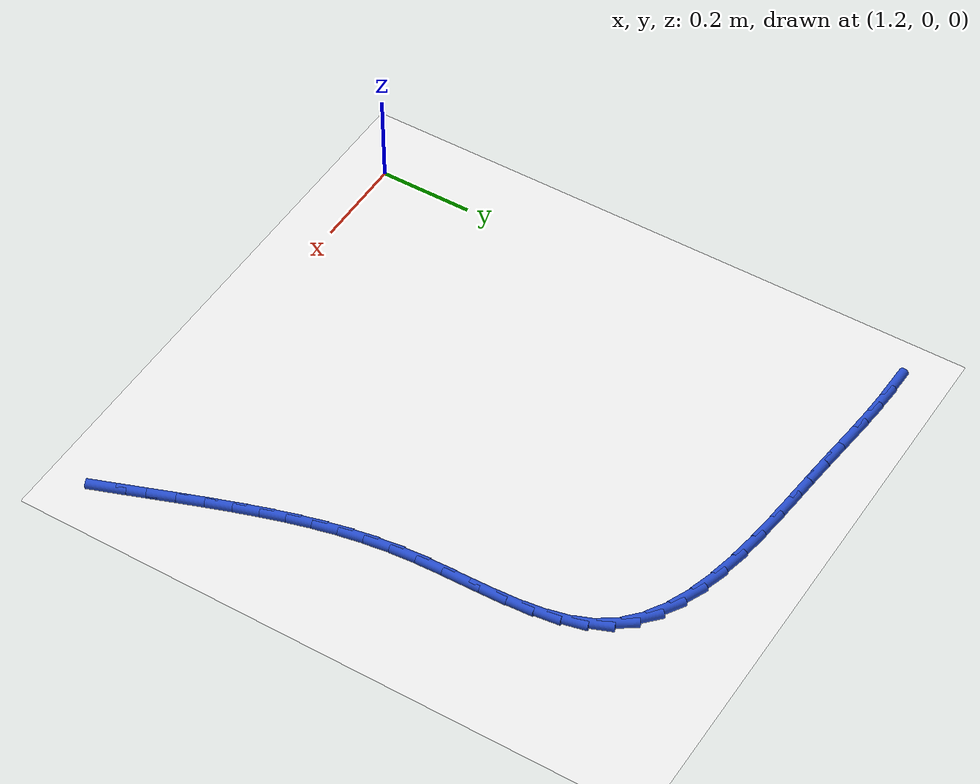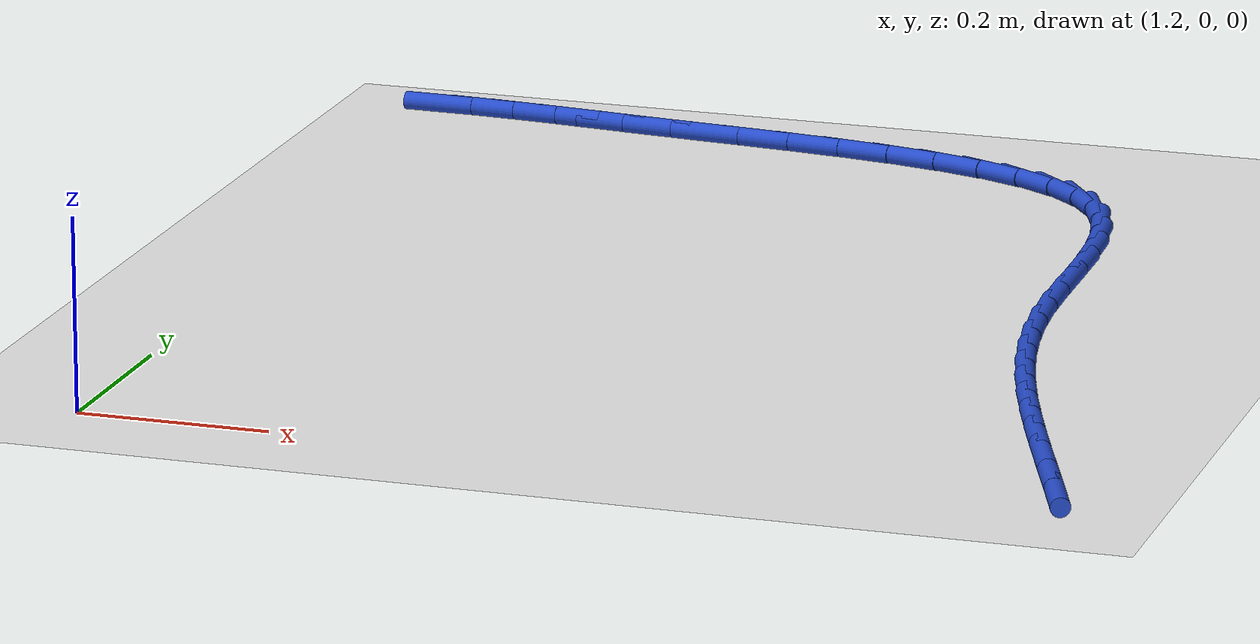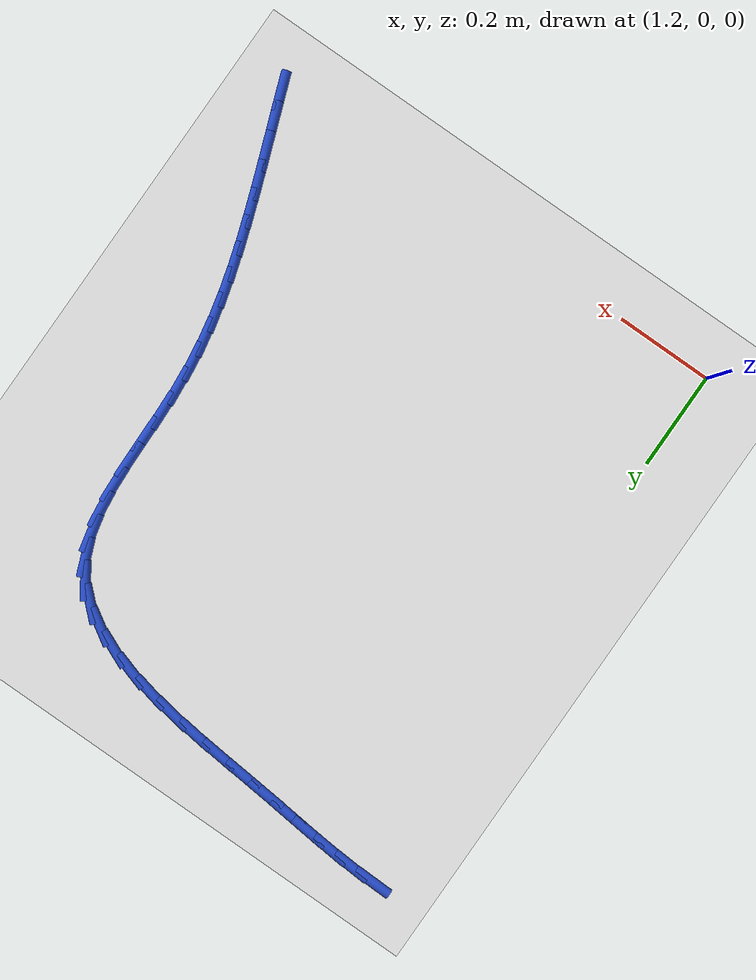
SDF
<sdf version="1.6">
 <world name="default">
  <model name="ground_plane">
   <static>1</static>
   <link name="link">
    <collision name="collision">
     <geometry><plane><normal>0 0 1</normal><size>100 100</size></plane></geometry>
     <surface><friction><ode><mu>100</mu><mu2>50</mu2></ode></friction></surface>
    </collision>
    <visual name="visual">
     <cast_shadows>0</cast_shadows>
     <geometry><plane><normal>0 0 1</normal><size>100 100</size></plane></geometry>
     <material>
      <script><uri>file://media/materials/scripts/gazebo.material</uri><name>Gazebo/WhiteGlow</name></script>
     </material>
    </visual>
   </link>
  </model>
  <model name="line">
   <link name="link_34">
    <pose>1.1733907742856655 1.1592010132068942 0.01 0 1.57 -0.024491602089216087</pose>
    <collision name="collision">
     <geometry><cylinder><radius>0.01</radius><length>0.08</length></cylinder></geometry>
    </collision>
    <visual name="visual">
     <material>
      <script><name>Gazebo/Blue</name><uri>file://media/materials/scripts/gazebo.material</uri></script>
     </material>
     <geometry><cylinder><radius>0.01</radius><length>0.08</length></cylinder></geometry>
    </visual>
   </link>
   <link name="link_35">
    <pose>1.2239940162210248 1.1579614108773129 0.01 0 1.57 -0.0646316995367665</pose>
    <collision name="collision">
     <geometry><cylinder><radius>0.01</radius><length>0.08</length></cylinder></geometry>
    </collision>
    <visual name="visual">
     <material>
      <script><name>Gazebo/Blue</name><uri>file://media/materials/scripts/gazebo.material</uri></script>
     </material>
     <geometry><cylinder><radius>0.01</radius><length>0.08</length></cylinder></geometry>
    </visual>
   </link>
   <link name="link_36">
    <pose>1.2752137911200274 1.1546463725678595 0.01 0 1.57 -0.09071010067974519</pose>
    <collision name="collision">
     <geometry><cylinder><radius>0.01</radius><length>0.08</length></cylinder></geometry>
    </collision>
    <visual name="visual">
     <material>
      <script><name>Gazebo/Blue</name><uri>file://media/materials/scripts/gazebo.material</uri></script>
     </material>
     <geometry><cylinder><radius>0.01</radius><length>0.08</length></cylinder></geometry>
    </visual>
   </link>
   <link name="link_37">
    <pose>1.3274568585449105 1.1498943578034995 0.01 0 1.57 -0.10304732148852294</pose>
    <collision name="collision">
     <geometry><cylinder><radius>0.01</radius><length>0.08</length></cylinder></geometry>
    </collision>
    <visual name="visual">
     <material>
      <script><name>Gazebo/Blue</name><uri>file://media/materials/scripts/gazebo.material</uri></script>
     </material>
     <geometry><cylinder><radius>0.01</radius><length>0.08</length></cylinder></geometry>
    </visual>
   </link>
   <link name="link_38">
    <pose>1.3811299780579092 1.1443438261091976 0.01 0 1.57 -0.10251445731559321</pose>
    <collision name="collision">
     <geometry><cylinder><radius>0.01</radius><length>0.08</length></cylinder></geometry>
    </collision>
    <visual name="visual">
     <material>
      <script><name>Gazebo/Blue</name><uri>file://media/materials/scripts/gazebo.material</uri></script>
     </material>
     <geometry><cylinder><radius>0.01</radius><length>0.08</length></cylinder></geometry>
    </visual>
   </link>
   <link name="link_39">
    <pose>1.43663990922126 1.138633237009918 0.01 0 1.57 -0.09242456907437945</pose>
    <collision name="collision">
     <geometry><cylinder><radius>0.01</radius><length>0.08</length></cylinder></geometry>
    </collision>
    <visual name="visual">
     <material>
      <script><name>Gazebo/Blue</name><uri>file://media/materials/scripts/gazebo.material</uri></script>
     </material>
     <geometry><cylinder><radius>0.01</radius><length>0.08</length></cylinder></geometry>
    </visual>
   </link>
   <link name="link_40">
    <pose>1.4942756534083494 1.1332910580200908 0.01 0 1.57 -0.08934370611154342</pose>
    <collision name="collision">
     <geometry><cylinder><radius>0.01</radius><length>0.08</length></cylinder></geometry>
    </collision>
    <visual name="visual">
     <material>
      <script><name>Gazebo/Blue</name><uri>file://media/materials/scripts/gazebo.material</uri></script>
     </material>
     <geometry><cylinder><radius>0.01</radius><length>0.08</length></cylinder></geometry>
    </visual>
   </link>
   <link name="link_41">
    <pose>1.553413619160161 1.1279933495186643 0.01 0 1.57 -0.09993796721931673</pose>
    <collision name="collision">
     <geometry><cylinder><radius>0.01</radius><length>0.08</length></cylinder></geometry>
    </collision>
    <visual name="visual">
     <material>
      <script><name>Gazebo/Blue</name><uri>file://media/materials/scripts/gazebo.material</uri></script>
     </material>
     <geometry><cylinder><radius>0.01</radius><length>0.08</length></cylinder></geometry>
    </visual>
   </link>
   <link name="link_42">
    <pose>1.61300403490625 1.1220180984447343 0.01 0 1.57 -0.12440871492177794</pose>
    <collision name="collision">
     <geometry><cylinder><radius>0.01</radius><length>0.08</length></cylinder></geometry>
    </collision>
    <visual name="visual">
     <material>
      <script><name>Gazebo/Blue</name><uri>file://media/materials/scripts/gazebo.material</uri></script>
     </material>
     <geometry><cylinder><radius>0.01</radius><length>0.08</length></cylinder></geometry>
    </visual>
   </link>
   <link name="link_43">
    <pose>1.6719947225764202 1.114641043946829 0.01 0 1.57 -0.1642433411252326</pose>
    <collision name="collision">
     <geometry><cylinder><radius>0.01</radius><length>0.08</length></cylinder></geometry>
    </collision>
    <visual name="visual">
     <material>
      <script><name>Gazebo/Blue</name><uri>file://media/materials/scripts/gazebo.material</uri></script>
     </material>
     <geometry><cylinder><radius>0.01</radius><length>0.08</length></cylinder></geometry>
    </visual>
   </link>
   <link name="link_44">
    <pose>1.729333504100478 1.1051379251734785 0.01 0 1.57 -0.22237057410697364</pose>
    <collision name="collision">
     <geometry><cylinder><radius>0.01</radius><length>0.08</length></cylinder></geometry>
    </collision>
    <visual name="visual">
     <material>
      <script><name>Gazebo/Blue</name><uri>file://media/materials/scripts/gazebo.material</uri></script>
     </material>
     <geometry><cylinder><radius>0.01</radius><length>0.08</length></cylinder></geometry>
    </visual>
   </link>
   <link name="link_45">
    <pose>1.7839682014082259 1.0927844812732115 0.01 0 1.57 -0.3033954484459668</pose>
    <collision name="collision">
     <geometry><cylinder><radius>0.01</radius><length>0.08</length></cylinder></geometry>
    </collision>
    <visual name="visual">
     <material>
      <script><name>Gazebo/Blue</name><uri>file://media/materials/scripts/gazebo.material</uri></script>
     </material>
     <geometry><cylinder><radius>0.01</radius><length>0.08</length></cylinder></geometry>
    </visual>
   </link>
   <link name="link_46">
    <pose>1.8348466364294709 1.0768564513945582 0.01 0 1.57 -0.4137078737110211</pose>
    <collision name="collision">
     <geometry><cylinder><radius>0.01</radius><length>0.08</length></cylinder></geometry>
    </collision>
    <visual name="visual">
     <material>
      <script><name>Gazebo/Blue</name><uri>file://media/materials/scripts/gazebo.material</uri></script>
     </material>
     <geometry><cylinder><radius>0.01</radius><length>0.08</length></cylinder></geometry>
    </visual>
   </link>
   <link name="link_47">
    <pose>1.8809166310940164 1.056629574686048 0.01 0 1.57 -0.560726887230613</pose>
    <collision name="collision">
     <geometry><cylinder><radius>0.01</radius><length>0.08</length></cylinder></geometry>
    </collision>
    <visual name="visual">
     <material>
      <script><name>Gazebo/Blue</name><uri>file://media/materials/scripts/gazebo.material</uri></script>
     </material>
     <geometry><cylinder><radius>0.01</radius><length>0.08</length></cylinder></geometry>
    </visual>
   </link>
   <link name="link_48">
    <pose>1.9211260073316685 1.03137959029621 0.01 0 1.57 -0.7496522175061833</pose>
    <collision name="collision">
     <geometry><cylinder><radius>0.01</radius><length>0.08</length></cylinder></geometry>
    </collision>
    <visual name="visual">
     <material>
      <script><name>Gazebo/Blue</name><uri>file://media/materials/scripts/gazebo.material</uri></script>
     </material>
     <geometry><cylinder><radius>0.01</radius><length>0.08</length></cylinder></geometry>
    </visual>
   </link>
   <link name="link_49">
    <pose>1.954422587072231 1.0003822373735738 0.01 0 1.57 -0.9754536804189096</pose>
    <collision name="collision">
     <geometry><cylinder><radius>0.01</radius><length>0.08</length></cylinder></geometry>
    </collision>
    <visual name="visual">
     <material>
      <script><name>Gazebo/Blue</name><uri>file://media/materials/scripts/gazebo.material</uri></script>
     </material>
     <geometry><cylinder><radius>0.01</radius><length>0.08</length></cylinder></geometry>
    </visual>
   </link>
   <link name="link_50">
    <pose>1.9797851643200544 0.9629368210913767 0.01 0 1.57 -1.190105979229469</pose>
    <collision name="collision">
     <geometry><cylinder><radius>0.01</radius><length>0.08</length></cylinder></geometry>
    </collision>
    <visual name="visual">
     <material>
      <script><name>Gazebo/Blue</name><uri>file://media/materials/scripts/gazebo.material</uri></script>
     </material>
     <geometry><cylinder><radius>0.01</radius><length>0.08</length></cylinder></geometry>
    </visual>
   </link>
   <link name="link_51">
    <pose>1.9972962529762357 0.9191824447551955 0.01 0 1.57 -1.3470797712673916</pose>
    <collision name="collision">
     <geometry><cylinder><radius>0.01</radius><length>0.08</length></cylinder></geometry>
    </collision>
    <visual name="visual">
     <material>
      <script><name>Gazebo/Blue</name><uri>file://media/materials/scripts/gazebo.material</uri></script>
     </material>
     <geometry><cylinder><radius>0.01</radius><length>0.08</length></cylinder></geometry>
    </visual>
   </link>
   <link name="link_52">
    <pose>2.0084166596154334 0.8703069266720129 0.01 0 1.57 -1.4523370505065756</pose>
    <collision name="collision">
     <geometry><cylinder><radius>0.01</radius><length>0.08</length></cylinder></geometry>
    </collision>
    <visual name="visual">
     <material>
      <script><name>Gazebo/Blue</name><uri>file://media/materials/scripts/gazebo.material</uri></script>
     </material>
     <geometry><cylinder><radius>0.01</radius><length>0.08</length></cylinder></geometry>
    </visual>
   </link>
   <link name="link_53">
    <pose>2.014693928456514 0.8175640820668949 0.01 0 1.57 -1.5169850400806506</pose>
    <collision name="collision">
     <geometry><cylinder><radius>0.01</radius><length>0.08</length></cylinder></geometry>
    </collision>
    <visual name="visual">
     <material>
      <script><name>Gazebo/Blue</name><uri>file://media/materials/scripts/gazebo.material</uri></script>
     </material>
     <geometry><cylinder><radius>0.01</radius><length>0.08</length></cylinder></geometry>
    </visual>
   </link>
   <link name="link_54">
    <pose>2.0176756037183456 0.7622077261649062 0.01 0 1.57 -1.5490488431457825</pose>
    <collision name="collision">
     <geometry><cylinder><radius>0.01</radius><length>0.08</length></cylinder></geometry>
    </collision>
    <visual name="visual">
     <material>
      <script><name>Gazebo/Blue</name><uri>file://media/materials/scripts/gazebo.material</uri></script>
     </material>
     <geometry><cylinder><radius>0.01</radius><length>0.08</length></cylinder></geometry>
    </visual>
   </link>
   <link name="link_55">
    <pose>2.018909229619796 0.7054916741911118 0.01 0 1.57 -1.5526166048127041</pose>
    <collision name="collision">
     <geometry><cylinder><radius>0.01</radius><length>0.08</length></cylinder></geometry>
    </collision>
    <visual name="visual">
     <material>
      <script><name>Gazebo/Blue</name><uri>file://media/materials/scripts/gazebo.material</uri></script>
     </material>
     <geometry><cylinder><radius>0.01</radius><length>0.08</length></cylinder></geometry>
    </visual>
   </link>
   <link name="link_56">
    <pose>2.0199423503797314 0.6486697413705778 0.01 0 1.57 -1.5280733959697104</pose>
    <collision name="collision">
     <geometry><cylinder><radius>0.01</radius><length>0.08</length></cylinder></geometry>
    </collision>
    <visual name="visual">
     <material>
      <script><name>Gazebo/Blue</name><uri>file://media/materials/scripts/gazebo.material</uri></script>
     </material>
     <geometry><cylinder><radius>0.01</radius><length>0.08</length></cylinder></geometry>
    </visual>
   </link>
   <link name="link_57">
    <pose>2.0223223614791395 0.5929955907504827 0.01 0 1.57 -1.479523611997774</pose>
    <collision name="collision">
     <geometry><cylinder><radius>0.01</radius><length>0.08</length></cylinder></geometry>
    </collision>
    <visual name="visual">
     <material>
      <script><name>Gazebo/Blue</name><uri>file://media/materials/scripts/gazebo.material</uri></script>
     </material>
     <geometry><cylinder><radius>0.01</radius><length>0.08</length></cylinder></geometry>
    </visual>
   </link>
   <link name="link_58">
    <pose>2.027232366978467 0.5393501686363963 0.01 0 1.57 -1.427771837746549</pose>
    <collision name="collision">
     <geometry><cylinder><radius>0.01</radius><length>0.08</length></cylinder></geometry>
    </collision>
    <visual name="visual">
     <material>
      <script><name>Gazebo/Blue</name><uri>file://media/materials/scripts/gazebo.material</uri></script>
     </material>
     <geometry><cylinder><radius>0.01</radius><length>0.08</length></cylinder></geometry>
    </visual>
   </link>
   <link name="link_59">
    <pose>2.0347078042561644 0.4874402114512244 0.01 0 1.57 -1.3788843363374608</pose>
    <collision name="collision">
     <geometry><cylinder><radius>0.01</radius><length>0.08</length></cylinder></geometry>
    </collision>
    <visual name="visual">
     <material>
      <script><name>Gazebo/Blue</name><uri>file://media/materials/scripts/gazebo.material</uri></script>
     </material>
     <geometry><cylinder><radius>0.01</radius><length>0.08</length></cylinder></geometry>
    </visual>
   </link>
   <link name="link_60">
    <pose>2.044558671358158 0.4367418023312113 0.01 0 1.57 -1.3346141325961087</pose>
    <collision name="collision">
     <geometry><cylinder><radius>0.01</radius><length>0.08</length></cylinder></geometry>
    </collision>
    <visual name="visual">
     <material>
      <script><name>Gazebo/Blue</name><uri>file://media/materials/scripts/gazebo.material</uri></script>
     </material>
     <geometry><cylinder><radius>0.01</radius><length>0.08</length></cylinder></geometry>
    </visual>
   </link>
   <link name="link_61">
    <pose>2.0565949663303695 0.38673102441259954 0.01 0 1.57 -1.2964014456067248</pose>
    <collision name="collision">
     <geometry><cylinder><radius>0.01</radius><length>0.08</length></cylinder></geometry>
    </collision>
    <visual name="visual">
     <material>
      <script><name>Gazebo/Blue</name><uri>file://media/materials/scripts/gazebo.material</uri></script>
     </material>
     <geometry><cylinder><radius>0.01</radius><length>0.08</length></cylinder></geometry>
    </visual>
   </link>
   <link name="link_62">
    <pose>2.0706266872187244 0.33688396083163424 0.01 0 1.57 -1.2652395307549769</pose>
    <collision name="collision">
     <geometry><cylinder><radius>0.01</radius><length>0.08</length></cylinder></geometry>
    </collision>
    <visual name="visual">
     <material>
      <script><name>Gazebo/Blue</name><uri>file://media/materials/scripts/gazebo.material</uri></script>
     </material>
     <geometry><cylinder><radius>0.01</radius><length>0.08</length></cylinder></geometry>
    </visual>
   </link>
   <link name="link_63">
    <pose>2.086463832069146 0.2866766947245578 0.01 0 1.57 -1.2416287035753943</pose>
    <collision name="collision">
     <geometry><cylinder><radius>0.01</radius><length>0.08</length></cylinder></geometry>
    </collision>
    <visual name="visual">
     <material>
      <script><name>Gazebo/Blue</name><uri>file://media/materials/scripts/gazebo.material</uri></script>
     </material>
     <geometry><cylinder><radius>0.01</radius><length>0.08</length></cylinder></geometry>
    </visual>
   </link>
   <link name="link_64">
    <pose>2.1039163989275584 0.23558530922761478 0.01 0 1.57 -1.2255698182125174</pose>
    <collision name="collision">
     <geometry><cylinder><radius>0.01</radius><length>0.08</length></cylinder></geometry>
    </collision>
    <visual name="visual">
     <material>
      <script><name>Gazebo/Blue</name><uri>file://media/materials/scripts/gazebo.material</uri></script>
     </material>
     <geometry><cylinder><radius>0.01</radius><length>0.08</length></cylinder></geometry>
    </visual>
   </link>
   <link name="link_65">
    <pose>2.1227890909803784 0.18310698430636518 0.01 0 1.57 -1.215939789729463</pose>
    <collision name="collision">
     <geometry><cylinder><radius>0.01</radius><length>0.08</length></cylinder></geometry>
    </collision>
    <visual name="visual">
     <material>
      <script><name>Gazebo/Blue</name><uri>file://media/materials/scripts/gazebo.material</uri></script>
     </material>
     <geometry><cylinder><radius>0.01</radius><length>0.08</length></cylinder></geometry>
    </visual>
   </link>
   <link name="link_66">
    <pose>2.142785566935916 0.12914150137501645 0.01 0 1.57 -1.2114472267352108</pose>
    <collision name="collision">
     <geometry><cylinder><radius>0.01</radius><length>0.08</length></cylinder></geometry>
    </collision>
    <visual name="visual">
     <material>
      <script><name>Gazebo/Blue</name><uri>file://media/materials/scripts/gazebo.material</uri></script>
     </material>
     <geometry><cylinder><radius>0.01</radius><length>0.08</length></cylinder></geometry>
    </visual>
   </link>
   <link name="link_67">
    <pose>2.1635187732767975 0.07395007548723463 0.01 0 1.57 -1.2116210061415396</pose>
    <collision name="collision">
     <geometry><cylinder><radius>0.01</radius><length>0.08</length></cylinder></geometry>
    </collision>
    <visual name="visual">
     <material>
      <script><name>Gazebo/Blue</name><uri>file://media/materials/scripts/gazebo.material</uri></script>
     </material>
     <geometry><cylinder><radius>0.01</radius><length>0.08</length></cylinder></geometry>
    </visual>
   </link>
   <link name="link_68">
    <pose>2.184598435617007 0.017806754920304663 0.01 0 1.57 -1.2162304734395963</pose>
    <collision name="collision">
     <geometry><cylinder><radius>0.01</radius><length>0.08</length></cylinder></geometry>
    </collision>
    <visual name="visual">
     <material>
      <script><name>Gazebo/Blue</name><uri>file://media/materials/scripts/gazebo.material</uri></script>
     </material>
     <geometry><cylinder><radius>0.01</radius><length>0.08</length></cylinder></geometry>
    </visual>
   </link>
  </model>
 </world>
</sdf>
